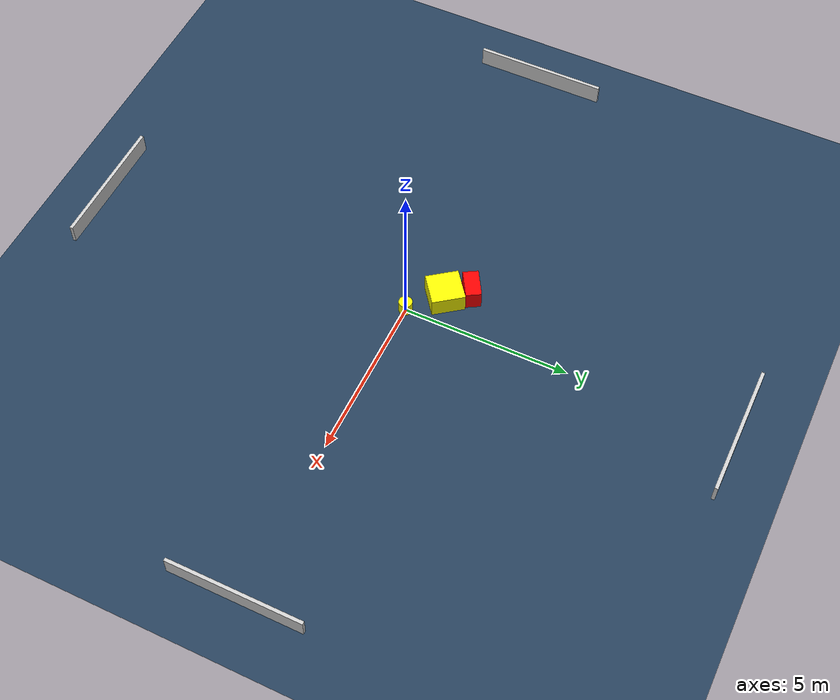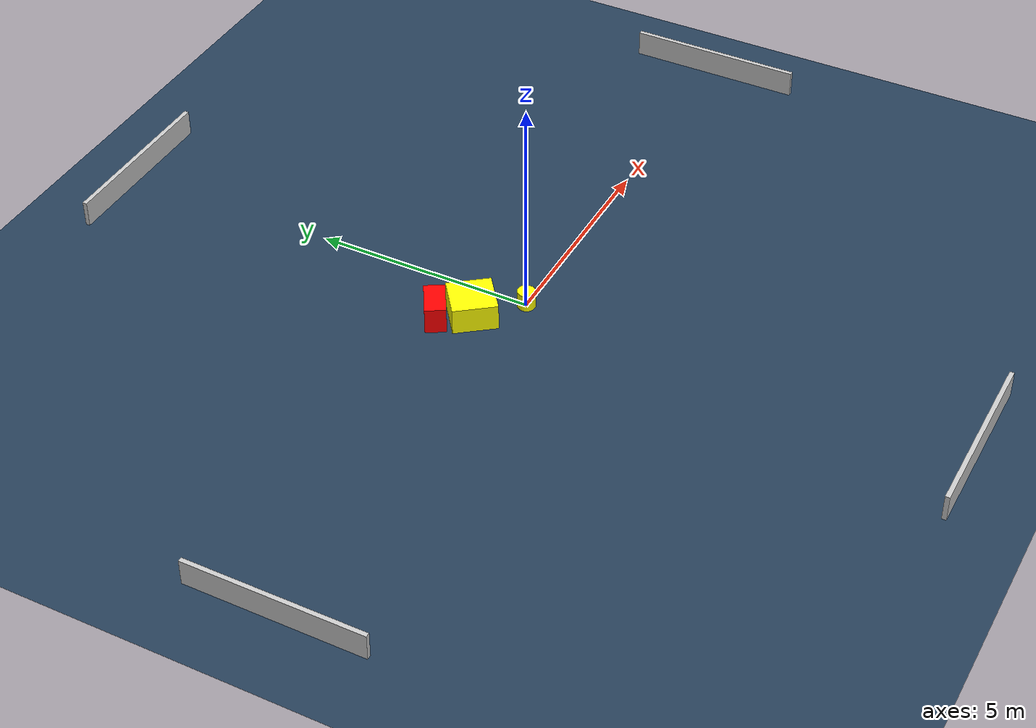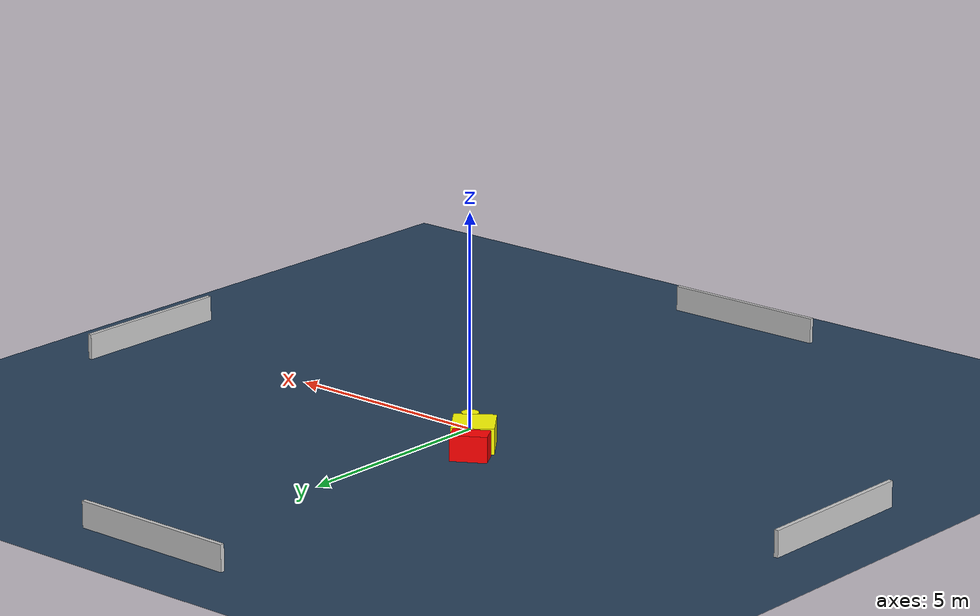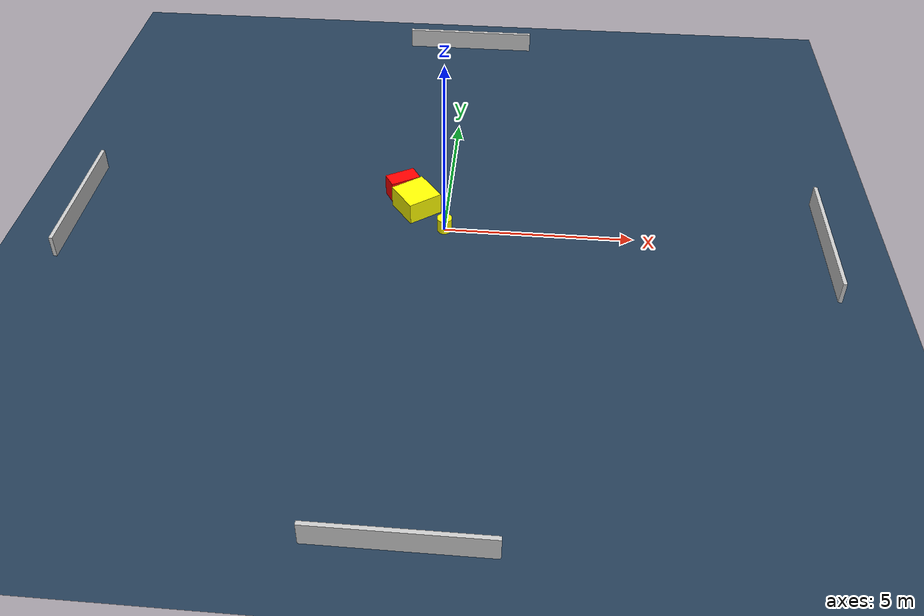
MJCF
<?xml version="1.0" ?>
<mujoco model="generated_environment">
  <option timestep="0.01" integrator="RK4" cone="elliptic"/>
  <default>
    <geom density="1"/>
  </default>
  <asset>
    <texture builtin="gradient" height="3072" name="skybox" rgb1="0.3 0.5 0.7" rgb2="0 0 0" type="skybox" width="512"/>
    <texture builtin="checker" height="300" name="groundplane" rgb1="0.2 0.3 0.4" rgb2="0.1 0.2 0.3" type="2d" width="300"/>
    <material name="groundplane" reflectance="0.2" texrepeat="5 5" texture="groundplane"/>
  </asset>
  <worldbody>
    <light dir="0 0 -1" directional="true" pos="0 0 1.5"/>
    <geom condim="3" friction="0.5 0.005 0.001" material="groundplane" name="floor" pos="0 0 0" size="0 0 0.05" type="plane"/>
    <body name="walls">
      <geom name="wall_1" condim="4" pos="-10.0 0.0 0.3" rgba="0.800000011920929 0.800000011920929 0.800000011920929 1.0" size="0.05 2.0 0.3" type="box"/>
      <geom name="wall_2" condim="4" pos="10.0 0.0 0.3" rgba="0.800000011920929 0.800000011920929 0.800000011920929 1.0" size="0.05 2.0 0.3" type="box"/>
      <geom name="wall_3" condim="4" pos="0.0 -10.0 0.3" rgba="0.800000011920929 0.800000011920929 0.800000011920929 1.0" size="2.0 0.05 0.3" type="box"/>
      <geom name="wall_4" condim="4" pos="0.0 10.0 0.3" rgba="0.800000011920929 0.800000011920929 0.800000011920929 1.0" size="2.0 0.05 0.3" type="box"/>
    </body>
    <body name="robot">
      <joint name="joint_x" type="slide" pos="0 0 0" axis="1 0 0"/>
      <joint name="joint_y" type="slide" pos="0 0 0" axis="0 1 0"/>
      <geom name="robot" type="cylinder" pos="0.0 0.0 0.2" size="0.2 0.2 0.0" mass="5.0" friction="1.0 0.005 0.0001" condim="4" rgba="1.0 1.0 0.0 1.0"/>
    </body>
    <body name="obstacle_1_movable">
      <geom name="obstacle_1_movable" condim="4" pos="-0.8484241989649112 0.8601448684622847 0.3" euler="0 0 307.1794301734121" friction="0.0 0.005 0.001" rgba="1.0 1.0 0.0 1.0" size="0.4941923863775183 0.4826225789080572 0.3" type="box" mass="0.1"/>
      <joint type="free"/>
    </body>
    <body name="obstacle_2_static">
      <geom name="obstacle_2_static" condim="4" pos="-1.2952662572666092 1.5041160970996057 0.3" euler="0 0 30.559673802850593" friction="0.0 0.005 0.001" rgba="1.0 0.0 0.0 1.0" size="0.42064794362622226 0.2325589682531001 0.3" type="box"/>
    </body>
  </worldbody>
  <actuator>
    <motor name="actuator_x" joint="joint_x" gear="1" ctrlrange="-1 1"/>
    <motor name="actuator_y" joint="joint_y" gear="1" ctrlrange="-1 1"/>
  </actuator>
</mujoco>
